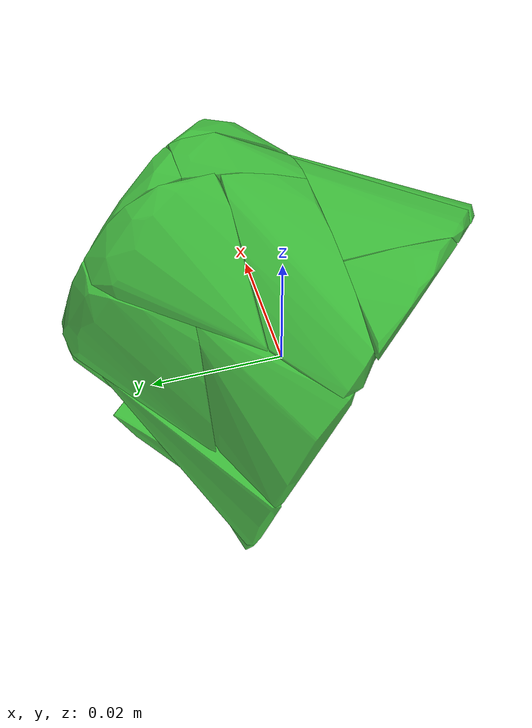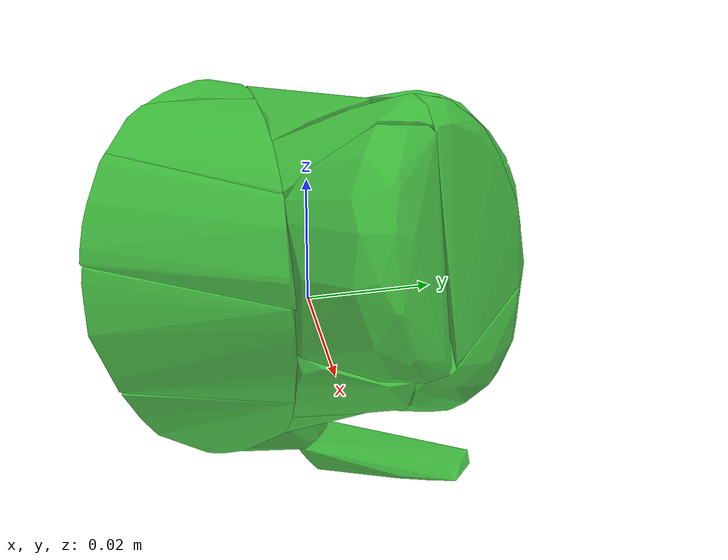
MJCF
<mujoco model="GreenCup">
  <asset>
    <mesh file="meshes/GreenCup/GreenCup_0.stl" name="GreenCup_0" scale="1.4 1.4 1.4"/>
    <mesh file="meshes/GreenCup/GreenCup_1.stl" name="GreenCup_1" scale="1.4 1.4 1.4"/>
    <mesh file="meshes/GreenCup/GreenCup_2.stl" name="GreenCup_2" scale="1.4 1.4 1.4"/>
    <mesh file="meshes/GreenCup/GreenCup_3.stl" name="GreenCup_3" scale="1.4 1.4 1.4"/>
    <mesh file="meshes/GreenCup/GreenCup_4.stl" name="GreenCup_4" scale="1.4 1.4 1.4"/>
    <mesh file="meshes/GreenCup/GreenCup_5.stl" name="GreenCup_5" scale="1.4 1.4 1.4"/>
    <mesh file="meshes/GreenCup/GreenCup_6.stl" name="GreenCup_6" scale="1.4 1.4 1.4"/>
    <mesh file="meshes/GreenCup/GreenCup_7.stl" name="GreenCup_7" scale="1.4 1.4 1.4"/>
    <mesh file="meshes/GreenCup/GreenCup_8.stl" name="GreenCup_8" scale="1.4 1.4 1.4"/>
    <mesh file="meshes/GreenCup/GreenCup_9.stl" name="GreenCup_9" scale="1.4 1.4 1.4"/>
    <mesh file="meshes/GreenCup/GreenCup_10.stl" name="GreenCup_10" scale="1.4 1.4 1.4"/>
    <mesh file="meshes/GreenCup/GreenCup_11.stl" name="GreenCup_11" scale="1.4 1.4 1.4"/>
    <mesh file="meshes/GreenCup/GreenCup_12.stl" name="GreenCup_12" scale="1.4 1.4 1.4"/>
    <mesh file="meshes/GreenCup/GreenCup_13.stl" name="GreenCup_13" scale="1.4 1.4 1.4"/>
    <mesh file="meshes/GreenCup/GreenCup_14.stl" name="GreenCup_14" scale="1.4 1.4 1.4"/>
    <mesh file="meshes/GreenCup/GreenCup_15.stl" name="GreenCup_15" scale="1.4 1.4 1.4"/>
    <mesh file="meshes/GreenCup/GreenCup_16.stl" name="GreenCup_16" scale="1.4 1.4 1.4"/>
    <mesh file="meshes/GreenCup/GreenCup_17.stl" name="GreenCup_17" scale="1.4 1.4 1.4"/>
    <mesh file="meshes/GreenCup/GreenCup_18.stl" name="GreenCup_18" scale="1.4 1.4 1.4"/>
    <mesh file="meshes/GreenCup/GreenCup_19.stl" name="GreenCup_19" scale="1.4 1.4 1.4"/>
  </asset>
  <worldbody>
    <body>
      <body name="collision">
        <geom condim="4" density="100" friction="1.8 0.3 0.1" group="1" mesh="GreenCup_0" pos="0 0 0" rgba="0.094 0.702 0.082 0.8" solimp="0.998 0.998 0.001" solref="0.002 1" type="mesh"/>
        <geom condim="4" density="100" friction="1.8 0.3 0.1" group="1" mesh="GreenCup_1" pos="0 0 0" rgba="0.094 0.702 0.082 0.8" solimp="0.998 0.998 0.001" solref="0.002 1" type="mesh"/>
        <geom condim="4" density="100" friction="1.8 0.3 0.1" group="1" mesh="GreenCup_2" pos="0 0 0" rgba="0.094 0.702 0.082 0.8" solimp="0.998 0.998 0.001" solref="0.002 1" type="mesh"/>
        <geom condim="4" density="100" friction="1.8 0.3 0.1" group="1" mesh="GreenCup_3" pos="0 0 0" rgba="0.094 0.702 0.082 0.8" solimp="0.998 0.998 0.001" solref="0.002 1" type="mesh"/>
        <geom condim="4" density="100" friction="1.8 0.3 0.1" group="1" mesh="GreenCup_4" pos="0 0 0" rgba="0.094 0.702 0.082 0.8" solimp="0.998 0.998 0.001" solref="0.002 1" type="mesh"/>
        <geom condim="4" density="100" friction="1.8 0.3 0.1" group="1" mesh="GreenCup_5" pos="0 0 0" rgba="0.094 0.702 0.082 0.8" solimp="0.998 0.998 0.001" solref="0.002 1" type="mesh"/>
        <geom condim="4" density="100" friction="1.8 0.3 0.1" group="1" mesh="GreenCup_6" pos="0 0 0" rgba="0.094 0.702 0.082 0.8" solimp="0.998 0.998 0.001" solref="0.002 1" type="mesh"/>
        <geom condim="4" density="100" friction="1.8 0.3 0.1" group="1" mesh="GreenCup_7" pos="0 0 0" rgba="0.094 0.702 0.082 0.8" solimp="0.998 0.998 0.001" solref="0.002 1" type="mesh"/>
        <geom condim="4" density="100" friction="1.8 0.3 0.1" group="1" mesh="GreenCup_8" pos="0 0 0" rgba="0.094 0.702 0.082 0.8" solimp="0.998 0.998 0.001" solref="0.002 1" type="mesh"/>
        <geom condim="4" density="100" friction="1.8 0.3 0.1" group="1" mesh="GreenCup_9" pos="0 0 0" rgba="0.094 0.702 0.082 0.8" solimp="0.998 0.998 0.001" solref="0.002 1" type="mesh"/>
        <geom condim="4" density="100" friction="1.8 0.3 0.1" group="1" mesh="GreenCup_10" pos="0 0 0" rgba="0.094 0.702 0.082 0.8" solimp="0.998 0.998 0.001" solref="0.002 1" type="mesh"/>
        <geom condim="4" density="100" friction="1.8 0.3 0.1" group="1" mesh="GreenCup_11" pos="0 0 0" rgba="0.094 0.702 0.082 0.8" solimp="0.998 0.998 0.001" solref="0.002 1" type="mesh"/>
        <geom condim="4" density="100" friction="1.8 0.3 0.1" group="1" mesh="GreenCup_12" pos="0 0 0" rgba="0.094 0.702 0.082 0.8" solimp="0.998 0.998 0.001" solref="0.002 1" type="mesh"/>
        <geom condim="4" density="100" friction="1.8 0.3 0.1" group="1" mesh="GreenCup_13" pos="0 0 0" rgba="0.094 0.702 0.082 0.8" solimp="0.998 0.998 0.001" solref="0.002 1" type="mesh"/>
        <geom condim="4" density="100" friction="1.8 0.3 0.1" group="1" mesh="GreenCup_14" pos="0 0 0" rgba="0.094 0.702 0.082 0.8" solimp="0.998 0.998 0.001" solref="0.002 1" type="mesh"/>
        <geom condim="4" density="100" friction="1.8 0.3 0.1" group="1" mesh="GreenCup_15" pos="0 0 0" rgba="0.094 0.702 0.082 0.8" solimp="0.998 0.998 0.001" solref="0.002 1" type="mesh"/>
        <geom condim="4" density="100" friction="1.8 0.3 0.1" group="1" mesh="GreenCup_16" pos="0 0 0" rgba="0.094 0.702 0.082 0.8" solimp="0.998 0.998 0.001" solref="0.002 1" type="mesh"/>
        <geom condim="4" density="100" friction="1.8 0.3 0.1" group="1" mesh="GreenCup_17" pos="0 0 0" rgba="0.094 0.702 0.082 0.8" solimp="0.998 0.998 0.001" solref="0.002 1" type="mesh"/>
        <geom condim="4" density="100" friction="1.8 0.3 0.1" group="1" mesh="GreenCup_18" pos="0 0 0" rgba="0.094 0.702 0.082 0.8" solimp="0.998 0.998 0.001" solref="0.002 1" type="mesh"/>
        <geom condim="4" density="100" friction="1.8 0.3 0.1" group="1" mesh="GreenCup_19" pos="0 0 0" rgba="0.094 0.702 0.082 0.8" solimp="0.998 0.998 0.001" solref="0.002 1" type="mesh"/>
      </body>
      <body name="visual">
        <geom conaffinity="0" contype="0" group="0" mass="0.0001" mesh="GreenCup_0" pos="0 0 0" rgba="0.094 0.702 0.082 0.8" type="mesh"/>
        <geom conaffinity="0" contype="0" group="0" mass="0.0001" mesh="GreenCup_1" pos="0 0 0" rgba="0.094 0.702 0.082 0.8" type="mesh"/>
        <geom conaffinity="0" contype="0" group="0" mass="0.0001" mesh="GreenCup_2" pos="0 0 0" rgba="0.094 0.702 0.082 0.8" type="mesh"/>
        <geom conaffinity="0" contype="0" group="0" mass="0.0001" mesh="GreenCup_3" pos="0 0 0" rgba="0.094 0.702 0.082 0.8" type="mesh"/>
        <geom conaffinity="0" contype="0" group="0" mass="0.0001" mesh="GreenCup_4" pos="0 0 0" rgba="0.094 0.702 0.082 0.8" type="mesh"/>
        <geom conaffinity="0" contype="0" group="0" mass="0.0001" mesh="GreenCup_5" pos="0 0 0" rgba="0.094 0.702 0.082 0.8" type="mesh"/>
        <geom conaffinity="0" contype="0" group="0" mass="0.0001" mesh="GreenCup_6" pos="0 0 0" rgba="0.094 0.702 0.082 0.8" type="mesh"/>
        <geom conaffinity="0" contype="0" group="0" mass="0.0001" mesh="GreenCup_7" pos="0 0 0" rgba="0.094 0.702 0.082 0.8" type="mesh"/>
        <geom conaffinity="0" contype="0" group="0" mass="0.0001" mesh="GreenCup_8" pos="0 0 0" rgba="0.094 0.702 0.082 0.8" type="mesh"/>
        <geom conaffinity="0" contype="0" group="0" mass="0.0001" mesh="GreenCup_9" pos="0 0 0" rgba="0.094 0.702 0.082 0.8" type="mesh"/>
        <geom conaffinity="0" contype="0" group="0" mass="0.0001" mesh="GreenCup_10" pos="0 0 0" rgba="0.094 0.702 0.082 0.8" type="mesh"/>
        <geom conaffinity="0" contype="0" group="0" mass="0.0001" mesh="GreenCup_11" pos="0 0 0" rgba="0.094 0.702 0.082 0.8" type="mesh"/>
        <geom conaffinity="0" contype="0" group="0" mass="0.0001" mesh="GreenCup_12" pos="0 0 0" rgba="0.094 0.702 0.082 0.8" type="mesh"/>
        <geom conaffinity="0" contype="0" group="0" mass="0.0001" mesh="GreenCup_13" pos="0 0 0" rgba="0.094 0.702 0.082 0.8" type="mesh"/>
        <geom conaffinity="0" contype="0" group="0" mass="0.0001" mesh="GreenCup_14" pos="0 0 0" rgba="0.094 0.702 0.082 0.8" type="mesh"/>
        <geom conaffinity="0" contype="0" group="0" mass="0.0001" mesh="GreenCup_15" pos="0 0 0" rgba="0.094 0.702 0.082 0.8" type="mesh"/>
        <geom conaffinity="0" contype="0" group="0" mass="0.0001" mesh="GreenCup_16" pos="0 0 0" rgba="0.094 0.702 0.082 0.8" type="mesh"/>
        <geom conaffinity="0" contype="0" group="0" mass="0.0001" mesh="GreenCup_17" pos="0 0 0" rgba="0.094 0.702 0.082 0.8" type="mesh"/>
        <geom conaffinity="0" contype="0" group="0" mass="0.0001" mesh="GreenCup_18" pos="0 0 0" rgba="0.094 0.702 0.082 0.8" type="mesh"/>
        <geom conaffinity="0" contype="0" group="0" mass="0.0001" mesh="GreenCup_19" pos="0 0 0" rgba="0.094 0.702 0.082 0.8" type="mesh"/>
      </body>
      <site name="bottom_site" pos="0 0 -0.06" rgba="0 0 0 0" size="0.005"/>
      <site name="top_site" pos="0 0 0.04" rgba="0 0 0 0" size="0.005"/>
      <site name="horizontal_radius_site" pos="0.025 0.025 0" rgba="0 0 0 0" size="0.005"/>
    </body>
  </worldbody>
</mujoco>
